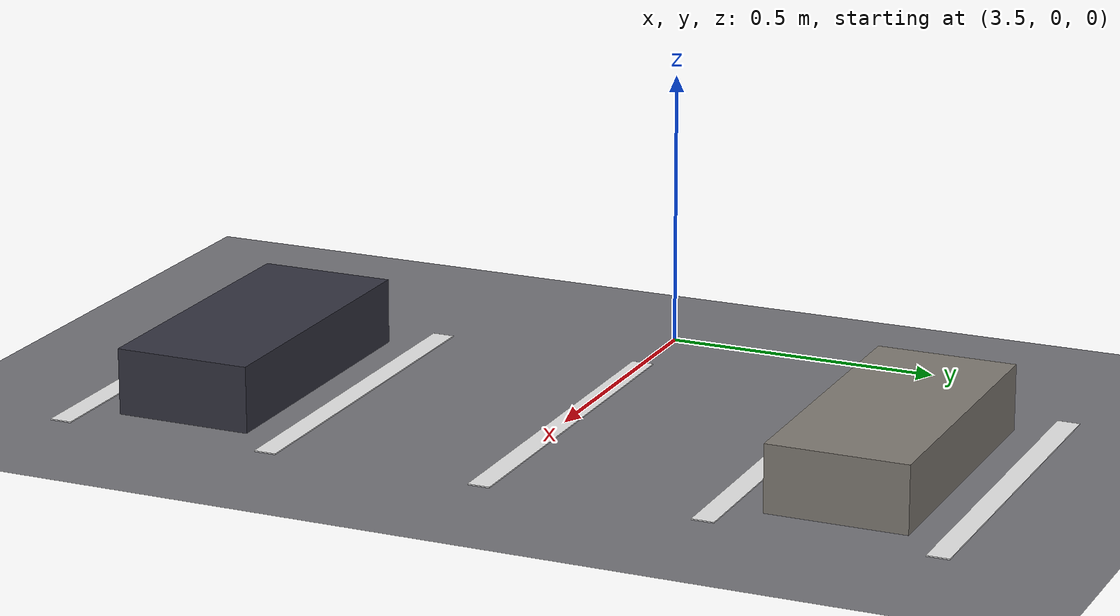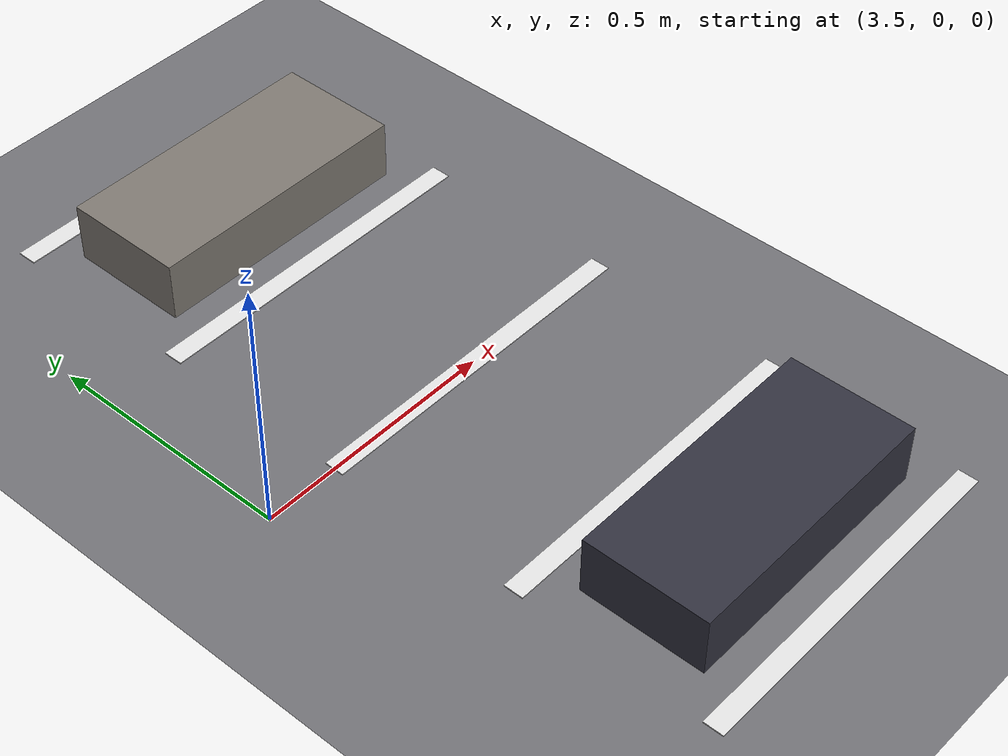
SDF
<?xml version="1.0" ?>
<!--
  Scene family: parking lot. Bay markings scaled to the 1/16 rover
  (0.4 x 0.7 m bays) plus two parked-vehicle-sized static boxes.
  Props/lighting/materials randomized by scene_manager.py.
-->
<sdf version="1.9">
  <world name="parking_lot">
    <physics name="1ms" type="ignored">
      <max_step_size>0.001</max_step_size>
      <real_time_factor>1.0</real_time_factor>
    </physics>
    <plugin filename="gz-sim-physics-system" name="gz::sim::systems::Physics"/>
    <plugin filename="gz-sim-user-commands-system" name="gz::sim::systems::UserCommands"/>
    <plugin filename="gz-sim-sensors-system" name="gz::sim::systems::Sensors">
      <render_engine>ogre2</render_engine>
    </plugin>
    <plugin filename="gz-sim-scene-broadcaster-system" name="gz::sim::systems::SceneBroadcaster"/>

    <light type="directional" name="sun">
      <cast_shadows>true</cast_shadows>
      <pose>0 0 10 0 0 0</pose>
      <diffuse>0.35 0.35 0.35 1</diffuse>
      <specular>0.5 0.5 0.5 1</specular>
      <direction>-0.5 0.1 -0.9</direction>
    </light>

    <model name="ground_plane">
      <static>true</static>
      <link name="link">
        <collision name="collision">
          <geometry>
            <plane><normal>0 0 1</normal><size>200 200</size></plane>
          </geometry>
        </collision>
        <visual name="visual">
          <geometry>
            <plane><normal>0 0 1</normal><size>200 200</size></plane>
          </geometry>
          <material>
            <ambient>0.45 0.45 0.47 1</ambient>
            <diffuse>0.45 0.45 0.47 1</diffuse>
            <specular>0.1 0.1 0.1 1</specular>
          </material>
        </visual>
      </link>
    </model>

    <!-- Five bay divider lines: bays 0.4 m wide, 0.7 m deep, along +x at x=4 -->
    <model name="bay_lines">
      <static>true</static>
      <pose>4.0 0 0.001 0 0 0</pose>
      <link name="link">
        <visual name="line_0">
          <pose>0 -0.8 0 0 0 0</pose>
          <geometry><box><size>0.7 0.04 0.002</size></box></geometry>
          <material><ambient>0.9 0.9 0.9 1</ambient><diffuse>0.9 0.9 0.9 1</diffuse></material>
        </visual>
        <visual name="line_1">
          <pose>0 -0.4 0 0 0 0</pose>
          <geometry><box><size>0.7 0.04 0.002</size></box></geometry>
          <material><ambient>0.9 0.9 0.9 1</ambient><diffuse>0.9 0.9 0.9 1</diffuse></material>
        </visual>
        <visual name="line_2">
          <pose>0 0.0 0 0 0 0</pose>
          <geometry><box><size>0.7 0.04 0.002</size></box></geometry>
          <material><ambient>0.9 0.9 0.9 1</ambient><diffuse>0.9 0.9 0.9 1</diffuse></material>
        </visual>
        <visual name="line_3">
          <pose>0 0.4 0 0 0 0</pose>
          <geometry><box><size>0.7 0.04 0.002</size></box></geometry>
          <material><ambient>0.9 0.9 0.9 1</ambient><diffuse>0.9 0.9 0.9 1</diffuse></material>
        </visual>
        <visual name="line_4">
          <pose>0 0.8 0 0 0 0</pose>
          <geometry><box><size>0.7 0.04 0.002</size></box></geometry>
          <material><ambient>0.9 0.9 0.9 1</ambient><diffuse>0.9 0.9 0.9 1</diffuse></material>
        </visual>
      </link>
    </model>

    <model name="parked_a">
      <static>true</static>
      <pose>4.0 -0.6 0.06 0 0 0</pose>
      <link name="link">
        <collision name="collision">
          <geometry><box><size>0.55 0.25 0.12</size></box></geometry>
        </collision>
        <visual name="visual">
          <geometry><box><size>0.55 0.25 0.12</size></box></geometry>
          <material><ambient>0.2 0.2 0.25 1</ambient><diffuse>0.2 0.2 0.25 1</diffuse></material>
        </visual>
      </link>
    </model>

    <model name="parked_b">
      <static>true</static>
      <pose>4.0 0.6 0.06 0 0 0</pose>
      <link name="link">
        <collision name="collision">
          <geometry><box><size>0.55 0.25 0.12</size></box></geometry>
        </collision>
        <visual name="visual">
          <geometry><box><size>0.55 0.25 0.12</size></box></geometry>
          <material><ambient>0.5 0.48 0.45 1</ambient><diffuse>0.5 0.48 0.45 1</diffuse></material>
        </visual>
      </link>
    </model>
  </world>
</sdf>
